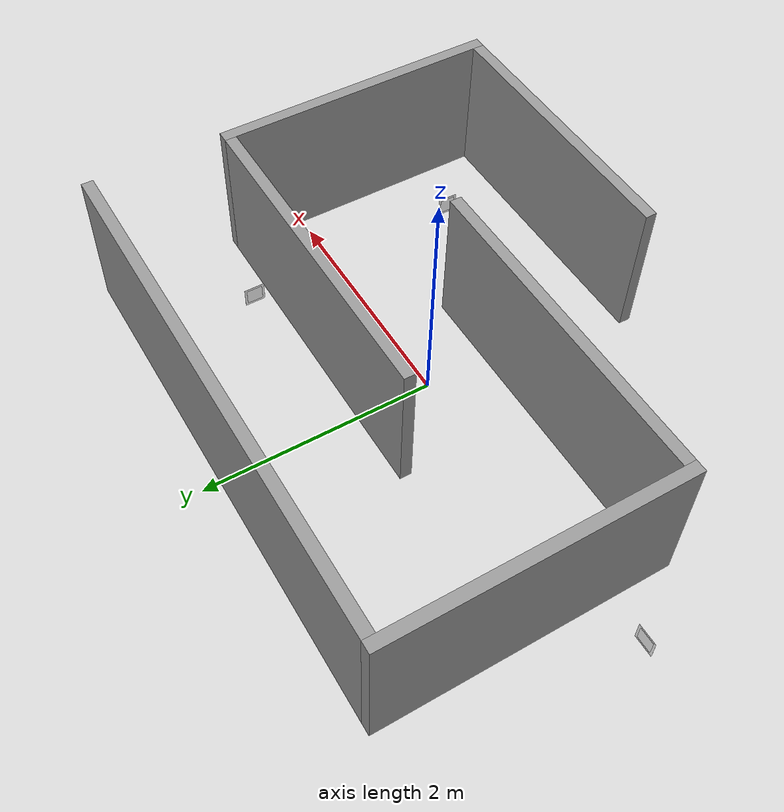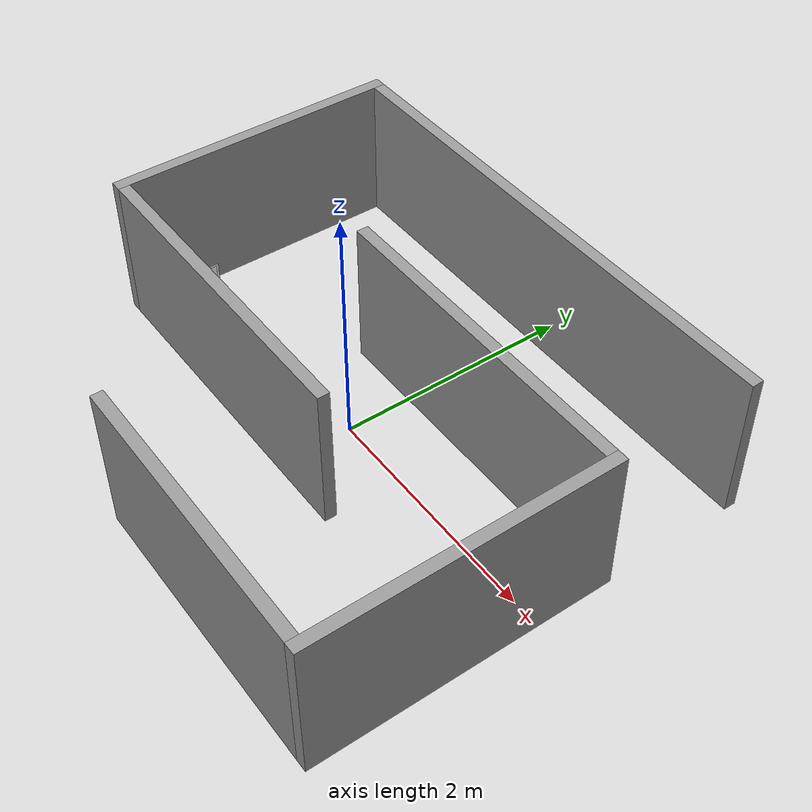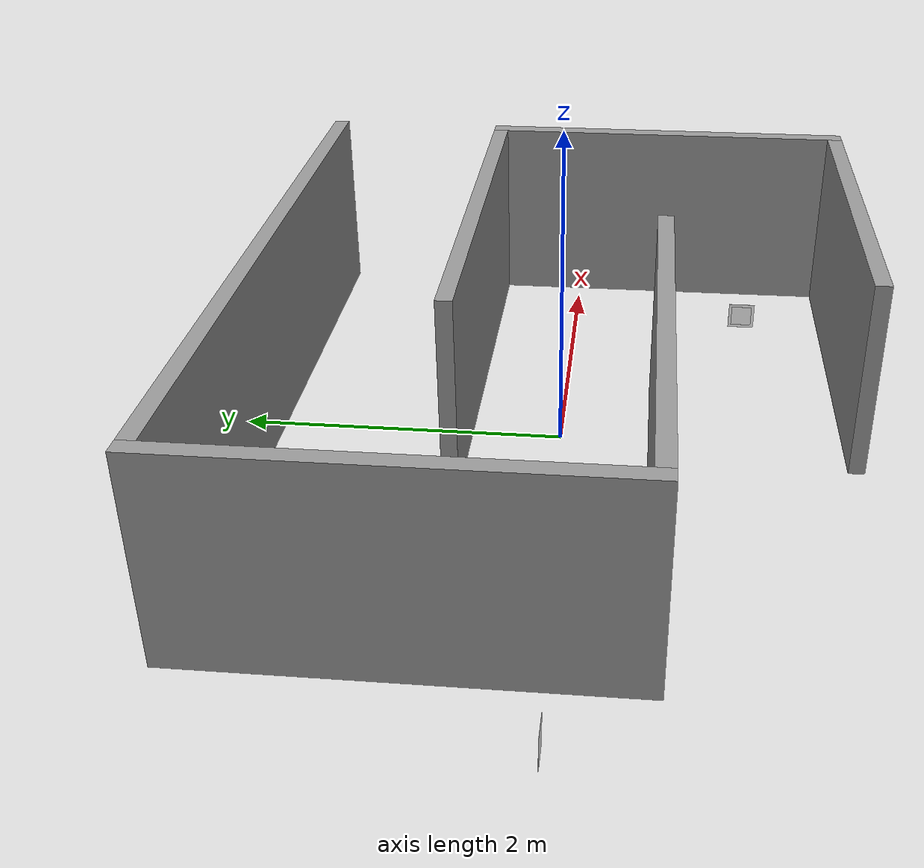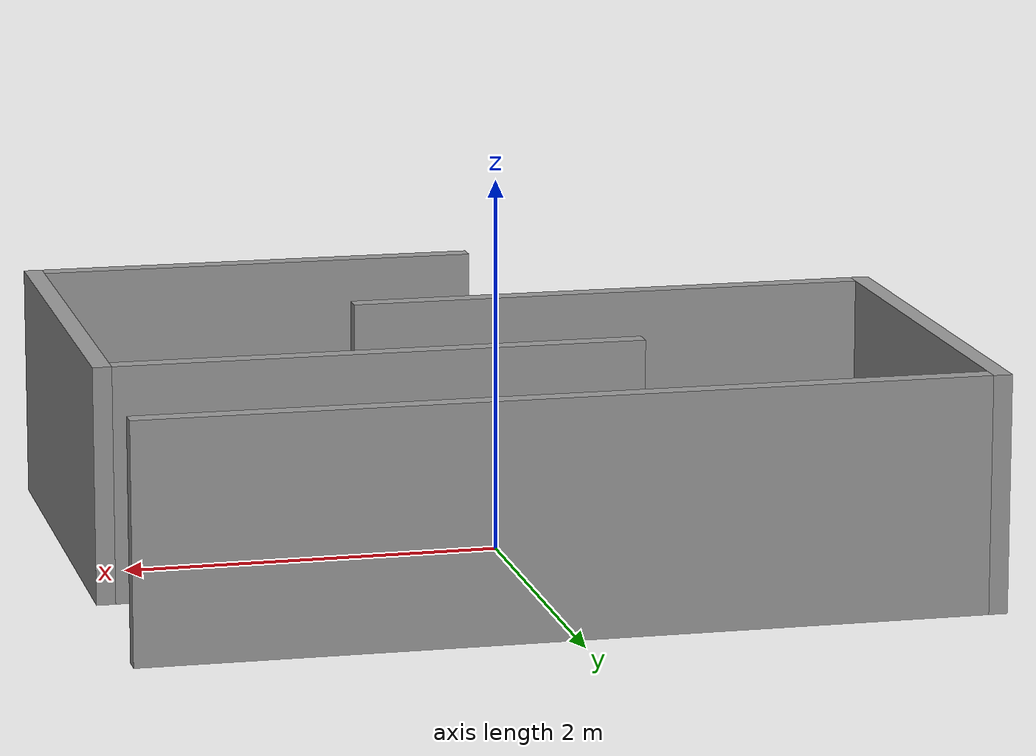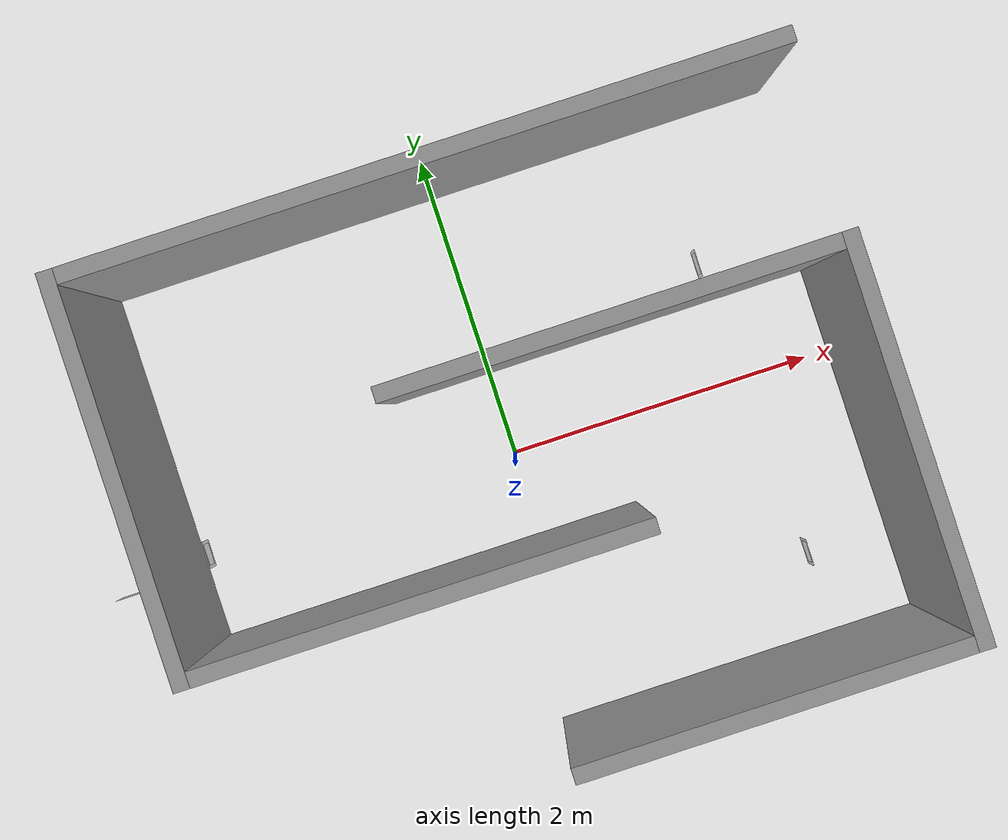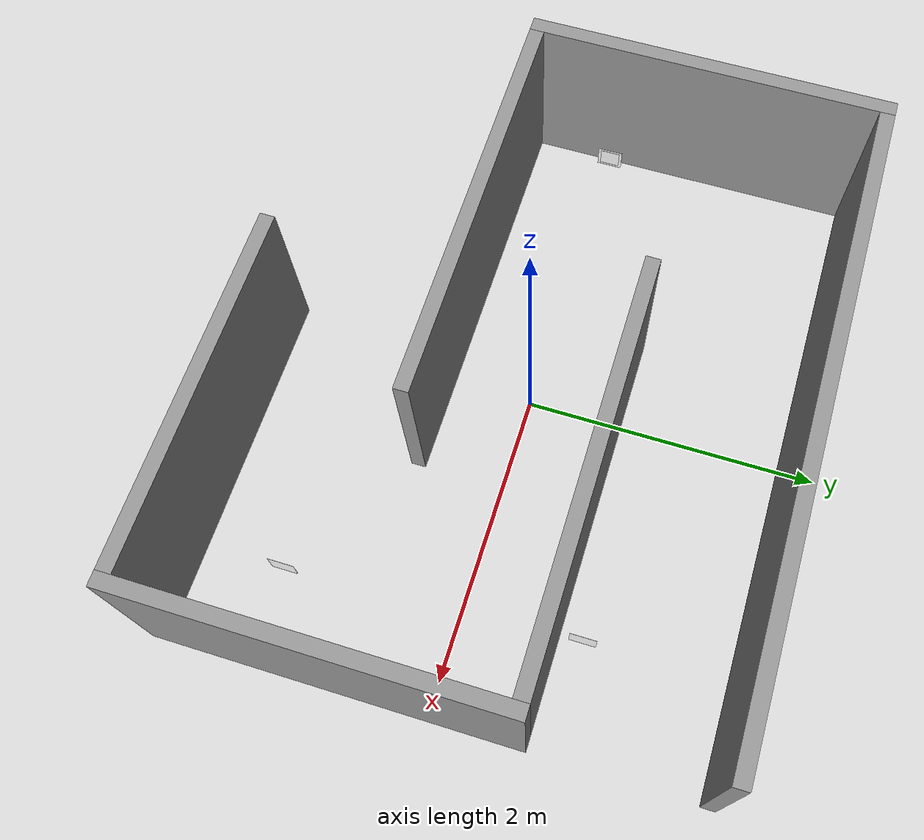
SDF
<sdf version="1.4">
 <world name="default">
  <physics name="1ms" type="ignored">
   <max_step_size>0.001</max_step_size>
   <real_time_factor>1.0</real_time_factor>
  </physics>
  <plugin filename="gz-sim-physics-system" name="gz::sim::systems::Physics"/>
  <plugin filename="gz-sim-user-commands-system" name="gz::sim::systems::UserCommands"/>
  <plugin filename="gz-sim-scene-broadcaster-system" name="gz::sim::systems::SceneBroadcaster"/>
  <plugin filename="gz-sim-sensors-system" name="gz::sim::systems::Sensors">
   <render_engine>ogre2</render_engine>
  </plugin>
  <scene><ambient>0.4 0.4 0.4 1</ambient><background>0.7 0.7 0.7 1</background><shadows>false</shadows></scene>
  <include><uri>model://avoidance_world_1</uri></include>
  <include>
   <name>marker_0</name>
   <uri>model://aruco_marker_0</uri>
   <pose>-2.65 -0.10 0.091 0 0 1.5708</pose>
  </include>
  <include>
   <name>marker_1</name>
   <uri>model://aruco_marker_1</uri>
   <pose>1.60 -1.20 0.091 0 0 3.14159</pose>
  </include>
  <include><name>marker_2</name><uri>model://aruco_marker_2</uri><pose>-2.10 0 0.091 0 0 0.0</pose></include>
  <include>
   <name>marker_3</name>
   <uri>model://aruco_marker_3</uri>
   <pose>1.50 0.80 0.091 0 0 3.14159</pose>
  </include>
 </world>
</sdf>

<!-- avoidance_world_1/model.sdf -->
<sdf version="1.5">
  <model name='office'>

    <static>1</static>

    <link name='Wall_10'>
        <pose>-0.750 -0.6 0.625 0.0 0.0 0.0</pose>

        <visual name='Wall_10_Visual'>
            <pose>0 0 0 0 -0 0</pose>
            <geometry>
                <box>
                    <size>2.8 0.1 1.25</size>
                </box>
            </geometry>
              <material>
                <ambient>0.6 0.6 0.6 1</ambient>
                <diffuse>0.6 0.6 0.6 1</diffuse>
                <specular>0.6 0.6 0.6 1</specular>
              </material>
        <cast_shadows>0</cast_shadows>
      </visual>

      <collision name='Wall_10_Collision'>
        <max_contacts>10</max_contacts>
        <pose>0 0 0.0 0 0 0</pose>
        <geometry>
          <box>
            <size>2.8 0.1 1.25</size>
          </box>
        </geometry>
        <surface>
          <friction>
            <ode>
              <mu>1</mu>
              <mu2>1</mu2>
              <fdir1>0 0 0</fdir1>
              <slip1>0</slip1>
              <slip2>0</slip2>
            </ode>
          </friction>
          <bounce>
            <restitution_coefficient>0</restitution_coefficient>
            <threshold>1e+06</threshold>
          </bounce>
          <contact>
            <collide_without_contact>0</collide_without_contact>
            <collide_without_contact_bitmask>1</collide_without_contact_bitmask>
            <collide_bitmask>1</collide_bitmask>
            <ode>
              <soft_cfm>0</soft_cfm>
              <soft_erp>0.2</soft_erp>
              <kp>1e+13</kp>
              <kd>1</kd>
              <max_vel>0.01</max_vel>
              <min_depth>0</min_depth>
            </ode>
            <bullet>
              <split_impulse>1</split_impulse>
              <split_impulse_penetration_threshold>-0.01</split_impulse_penetration_threshold>
              <soft_cfm>0</soft_cfm>
              <soft_erp>0.2</soft_erp>
              <kp>1e+13</kp>
              <kd>1</kd>
            </bullet>
          </contact>
        </surface>
      </collision>
    </link>

    <link name='Wall_20'>
          <pose>-2.2 0.6 0.625 0.0 0.0 0.0</pose>

          <visual name='Wall_20_Visual'>
              <pose>0 0 0 0 -0 0</pose>
              <geometry>
                  <box>
                      <size>0.1 2.5 1.25</size>
                  </box>
              </geometry>
              <material>
                <ambient>0.6 0.6 0.6 1</ambient>
                <diffuse>0.6 0.6 0.6 1</diffuse>
                <specular>0.6 0.6 0.6 1</specular>
              </material>
          <cast_shadows>0</cast_shadows>
        </visual>

        <collision name='Wall_20_Collision'>
          <max_contacts>10</max_contacts>
          <pose>0 0 0.0 0 0 0</pose>
          <geometry>
            <box>
              <size>0.1 2.5 1.25</size>
            </box>
          </geometry>
          <surface>
            <friction>
              <ode>
                <mu>1</mu>
                <mu2>1</mu2>
                <fdir1>0 0 0</fdir1>
                <slip1>0</slip1>
                <slip2>0</slip2>
              </ode>
            </friction>
            <bounce>
              <restitution_coefficient>0</restitution_coefficient>
              <threshold>1e+06</threshold>
            </bounce>
            <contact>
              <collide_without_contact>0</collide_without_contact>
              <collide_without_contact_bitmask>1</collide_without_contact_bitmask>
              <collide_bitmask>1</collide_bitmask>
              <ode>
                <soft_cfm>0</soft_cfm>
                <soft_erp>0.2</soft_erp>
                <kp>1e+13</kp>
                <kd>1</kd>
                <max_vel>0.01</max_vel>
                <min_depth>0</min_depth>
              </ode>
              <bullet>
                <split_impulse>1</split_impulse>
                <split_impulse_penetration_threshold>-0.01</split_impulse_penetration_threshold>
                <soft_cfm>0</soft_cfm>
                <soft_erp>0.2</soft_erp>
                <kp>1e+13</kp>
                <kd>1</kd>
              </bullet>
            </contact>
          </surface>
        </collision>
    </link>

    <link name='Wall_30'>
        <pose>0.05 1.8 0.625 0.0 0.0 0.0</pose>

        <visual name='Wall_30_Visual'>
            <pose>0 0 0 0 -0 0</pose>
            <geometry>
                <box>
                    <size>4.4 0.1 1.25</size>
                </box>
            </geometry>
              <material>
                <ambient>0.6 0.6 0.6 1</ambient>
                <diffuse>0.6 0.6 0.6 1</diffuse>
                <specular>0.6 0.6 0.6 1</specular>
              </material>
        <cast_shadows>0</cast_shadows>
      </visual>

      <collision name='Wall_30_Collision'>
        <max_contacts>10</max_contacts>
        <pose>0 0 0.0 0 0 0</pose>
        <geometry>
          <box>
            <size>4.4 0.1 1.25</size>
          </box>
        </geometry>
        <surface>
          <friction>
            <ode>
              <mu>1</mu>
              <mu2>1</mu2>
              <fdir1>0 0 0</fdir1>
              <slip1>0</slip1>
              <slip2>0</slip2>
            </ode>
          </friction>
          <bounce>
            <restitution_coefficient>0</restitution_coefficient>
            <threshold>1e+06</threshold>
          </bounce>
          <contact>
            <collide_without_contact>0</collide_without_contact>
            <collide_without_contact_bitmask>1</collide_without_contact_bitmask>
            <collide_bitmask>1</collide_bitmask>
            <ode>
              <soft_cfm>0</soft_cfm>
              <soft_erp>0.2</soft_erp>
              <kp>1e+13</kp>
              <kd>1</kd>
              <max_vel>0.01</max_vel>
              <min_depth>0</min_depth>
            </ode>
            <bullet>
              <split_impulse>1</split_impulse>
              <split_impulse_penetration_threshold>-0.01</split_impulse_penetration_threshold>
              <soft_cfm>0</soft_cfm>
              <soft_erp>0.2</soft_erp>
              <kp>1e+13</kp>
              <kd>1</kd>
            </bullet>
          </contact>
        </surface>
      </collision>
    </link>

    <link name='Wall_40'>
        <!-- Parte superior quitada: antes y=-1.85..1.75, ahora y=-1.85..0.65
             Abre salida este de la zona superior (entre Wall_60 y Wall_30). -->
        <pose>2.2 -0.60 0.625 0.0 0.0 0.0</pose>

        <visual name='Wall_40_Visual'>
            <pose>0 0 0 0 -0 0</pose>
            <geometry>
                <box>
                    <size>0.1 2.5 1.25</size>
                </box>
            </geometry>
              <material>
                <ambient>0.6 0.6 0.6 1</ambient>
                <diffuse>0.6 0.6 0.6 1</diffuse>
                <specular>0.6 0.6 0.6 1</specular>
              </material>
        <cast_shadows>0</cast_shadows>
      </visual>

      <collision name='Wall_40_Collision'>
        <max_contacts>10</max_contacts>
        <pose>0 0 0.0 0 0 0</pose>
        <geometry>
          <box>
            <size>0.1 2.5 1.25</size>
          </box>
        </geometry>
        <surface>
          <friction>
            <ode>
              <mu>1</mu>
              <mu2>1</mu2>
              <fdir1>0 0 0</fdir1>
              <slip1>0</slip1>
              <slip2>0</slip2>
            </ode>
          </friction>
          <bounce>
            <restitution_coefficient>0</restitution_coefficient>
            <threshold>1e+06</threshold>
          </bounce>
          <contact>
            <collide_without_contact>0</collide_without_contact>
            <collide_without_contact_bitmask>1</collide_without_contact_bitmask>
            <collide_bitmask>1</collide_bitmask>
            <ode>
              <soft_cfm>0</soft_cfm>
              <soft_erp>0.2</soft_erp>
              <kp>1e+13</kp>
              <kd>1</kd>
              <max_vel>0.01</max_vel>
              <min_depth>0</min_depth>
            </ode>
            <bullet>
              <split_impulse>1</split_impulse>
              <split_impulse_penetration_threshold>-0.01</split_impulse_penetration_threshold>
              <soft_cfm>0</soft_cfm>
              <soft_erp>0.2</soft_erp>
              <kp>1e+13</kp>
              <kd>1</kd>
            </bullet>
          </contact>
        </surface>
      </collision>
    </link>

    <link name='Wall_50'>
        <pose>0.95 -1.8 0.625 0.0 0.0 0.0</pose>

        <visual name='Wall_50_Visual'>
            <pose>0 0 0 0 -0 0</pose>
            <geometry>
                <box>
                    <size>2.4 0.1 1.25</size>
                </box>
            </geometry>
              <material>
                <ambient>0.6 0.6 0.6 1</ambient>
                <diffuse>0.6 0.6 0.6 1</diffuse>
                <specular>0.6 0.6 0.6 1</specular>
              </material>
        <cast_shadows>0</cast_shadows>
      </visual>

      <collision name='Wall_50_Collision'>
        <max_contacts>10</max_contacts>
        <pose>0 0 0.0 0 0 0</pose>
        <geometry>
          <box>
            <size>2.4 0.1 1.25</size>
          </box>
        </geometry>
        <surface>
          <friction>
            <ode>
              <mu>1</mu>
              <mu2>1</mu2>
              <fdir1>0 0 0</fdir1>
              <slip1>0</slip1>
              <slip2>0</slip2>
            </ode>
          </friction>
          <bounce>
            <restitution_coefficient>0</restitution_coefficient>
            <threshold>1e+06</threshold>
          </bounce>
          <contact>
            <collide_without_contact>0</collide_without_contact>
            <collide_without_contact_bitmask>1</collide_without_contact_bitmask>
            <collide_bitmask>1</collide_bitmask>
            <ode>
              <soft_cfm>0</soft_cfm>
              <soft_erp>0.2</soft_erp>
              <kp>1e+13</kp>
              <kd>1</kd>
              <max_vel>0.01</max_vel>
              <min_depth>0</min_depth>
            </ode>
            <bullet>
              <split_impulse>1</split_impulse>
              <split_impulse_penetration_threshold>-0.01</split_impulse_penetration_threshold>
              <soft_cfm>0</soft_cfm>
              <soft_erp>0.2</soft_erp>
              <kp>1e+13</kp>
              <kd>1</kd>
            </bullet>
          </contact>
        </surface>
      </collision>
    </link>

    <link name='Wall_60'>
        <pose>0.75 0.6 0.625 0.0 0.0 0.0</pose>

        <visual name='Wall_60_Visual'>
            <pose>0 0 0 0 -0 0</pose>
            <geometry>
                <box>
                    <size>2.8 0.1 1.25</size>
                </box>
            </geometry>
              <material>
                <ambient>0.6 0.6 0.6 1</ambient>
                <diffuse>0.6 0.6 0.6 1</diffuse>
                <specular>0.6 0.6 0.6 1</specular>
              </material>
        <cast_shadows>0</cast_shadows>
      </visual>

      <collision name='Wall_60_Collision'>
        <max_contacts>10</max_contacts>
        <pose>0 0 0.0 0 0 0</pose>
        <geometry>
          <box>
            <size>2.8 0.1 1.25</size>
          </box>
        </geometry>
        <surface>
          <friction>
            <ode>
              <mu>1</mu>
              <mu2>1</mu2>
              <fdir1>0 0 0</fdir1>
              <slip1>0</slip1>
              <slip2>0</slip2>
            </ode>
          </friction>
          <bounce>
            <restitution_coefficient>0</restitution_coefficient>
            <threshold>1e+06</threshold>
          </bounce>
          <contact>
            <collide_without_contact>0</collide_without_contact>
            <collide_without_contact_bitmask>1</collide_without_contact_bitmask>
            <collide_bitmask>1</collide_bitmask>
            <ode>
              <soft_cfm>0</soft_cfm>
              <soft_erp>0.2</soft_erp>
              <kp>1e+13</kp>
              <kd>1</kd>
              <max_vel>0.01</max_vel>
              <min_depth>0</min_depth>
            </ode>
            <bullet>
              <split_impulse>1</split_impulse>
              <split_impulse_penetration_threshold>-0.01</split_impulse_penetration_threshold>
              <soft_cfm>0</soft_cfm>
              <soft_erp>0.2</soft_erp>
              <kp>1e+13</kp>
              <kd>1</kd>
            </bullet>
          </contact>
        </surface>
      </collision>
    </link>

  </model>
  </sdf>

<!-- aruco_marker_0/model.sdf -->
<sdf version="1.5">
    <model name='aruco_marker_1'>
    <pose>0 0 0 0 0 0</pose>
    <static>true</static>
        <link name='link'>
            <inertial>
                <pose>0 0 0 0 -0 0</pose>
                <mass>0.281</mass>
                <inertia>
                    <ixx>0.0006167</ixx>
                    <ixy>0</ixy>
                    <ixz>0</ixz>
                    <iyy>0.0006167</iyy>
                    <iyz>0</iyz>
                    <izz>0.0006167</izz>
                </inertia>
            </inertial>

            <visual name='box_visual'>
                <cast_shadows>0</cast_shadows>
                    <geometry>
                        <box>
                            <size>0.001 0.18 0.18</size>
                        </box>
                    </geometry>
                <material>
                    <ambient>1 1 1 1</ambient>
                    <diffuse>1 1 1 1</diffuse>
                    <specular>1 1 1 1</specular>
                    <emissive>0.6 0.6 0.6 1</emissive>
                </material>
            </visual>

            <visual name='aruco_visual1'>
                <cast_shadows>0</cast_shadows>
                <pose>0.00065 0.0 0.0 1.5708 0.0 1.5708</pose>
                <geometry>
                    <plane>
                        <normal>0 0 1</normal>
                        <size>0.14 0.14</size>
                    </plane>
                </geometry>
                <material>
                    <pbr>
                        <metal>
                            <albedo_map>model://aruco_marker_0/materials/textures/marker0.png</albedo_map>
                            <normal_map>model://aruco_marker_0/materials/textures/marker0.png</normal_map>
                        </metal>
                    </pbr>
                    <ambient>1 1 1 1</ambient>
                    <diffuse>1 1 1 1</diffuse>
                    <specular>1 1 1 1</specular>
                    <emissive>0.0 0.0 0.0 1</emissive>
                </material>
            </visual>

        </link>
    </model>
</sdf>

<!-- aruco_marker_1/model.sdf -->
<sdf version="1.5">

    <model name='aruco_marker_2'>
        <pose>0 0 0 0 0 0</pose>
        <static>true</static>
        <link name='link'>
            <inertial>
                <pose>0 0 0 0 -0 0</pose>
                <mass>0.281</mass>
                <inertia>
                    <ixx>0.0006167</ixx>
                    <ixy>0</ixy>
                    <ixz>0</ixz>
                    <iyy>0.0006167</iyy>
                    <iyz>0</iyz>
                    <izz>0.0006167</izz>
                </inertia>
            </inertial>

            <visual name='box_visual'>
                <cast_shadows>0</cast_shadows>
                    <geometry>
                        <box>
                            <size>0.001 0.18 0.18</size>
                        </box>
                    </geometry>
                    <material>
                    <ambient>1 1 1 1</ambient>
                    <diffuse>1 1 1 1</diffuse>
                    <specular>1 1 1 1</specular>
                    <emissive>0.6 0.6 0.6 1</emissive>
                </material>
            </visual>

            <visual name='aruco_visual1'>
                <cast_shadows>0</cast_shadows>
                <pose>0.00065 0.0 0.0 1.5708 0.0 1.5708</pose>
                <geometry>
                    <plane>
                        <normal>0 0 1</normal>
                        <size>0.14 0.14</size>
                    </plane>
                </geometry>
                <material>
                    <pbr>
                        <metal>
                            <albedo_map>model://aruco_marker_1/materials/textures/marker1.png</albedo_map>
                            <normal_map>model://aruco_marker_1/materials/textures/marker1.png</normal_map>
                        </metal>
                    </pbr>
                    <ambient>1 1 1 1</ambient>
                    <diffuse>1 1 1 1</diffuse>
                    <specular>1 1 1 1</specular>
                    <emissive>0.0 0.0 0.0 1</emissive>
                </material>
            </visual>

        </link>
    </model>
</sdf>

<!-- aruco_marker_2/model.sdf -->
<sdf version="1.5">

    <model name='aruco_marker_3'>
        <pose>0 0 0 0 0 0</pose>
        <static>true</static>
        <link name='link'>
            <inertial>
                <pose>0 0 0 0 -0 0</pose>
                <mass>0.281</mass>
                <inertia>
                    <ixx>0.0006167</ixx>
                    <ixy>0</ixy>
                    <ixz>0</ixz>
                    <iyy>0.0006167</iyy>
                    <iyz>0</iyz>
                    <izz>0.0006167</izz>
                </inertia>
            </inertial>

            <visual name='box_visual'>
                <cast_shadows>0</cast_shadows>
                    <geometry>
                        <box>
                            <size>0.001 0.18 0.18</size>
                        </box>
                    </geometry>
                <material>
                    <ambient>1 1 1 1</ambient>
                    <diffuse>1 1 1 1</diffuse>
                    <specular>1 1 1 1</specular>
                    <emissive>0.6 0.6 0.6 1</emissive>
                </material>
            </visual>

            <visual name='aruco_visual1'>
                <cast_shadows>0</cast_shadows>
                <pose>0.00065 0.0 0.0 1.5708 0.0 1.5708</pose>
                <geometry>
                    <plane>
                        <normal>0 0 1</normal>
                        <size>0.14 0.14</size>
                    </plane>
                </geometry>
                <material>
                    <pbr>
                        <metal>
                            <albedo_map>model://aruco_marker_2/materials/textures/marker2.png</albedo_map>
                            <normal_map>model://aruco_marker_2/materials/textures/marker2.png</normal_map>
                        </metal>
                    </pbr>
                    <ambient>1 1 1 1</ambient>
                    <diffuse>1 1 1 1</diffuse>
                    <specular>1 1 1 1</specular>
                    <emissive>0.0 0.0 0.0 1</emissive>
                </material>
            </visual>

        </link>
    </model>
</sdf>

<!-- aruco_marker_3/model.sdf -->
<sdf version="1.5">

    <model name='aruco_marker_4'>
        <pose>0 0 0 0 0 0</pose>
        <static>true</static>
        <link name='link'>
            <inertial>
                <pose>0 0 0 0 -0 0</pose>
                <mass>0.281</mass>
                <inertia>
                    <ixx>0.0006167</ixx>
                    <ixy>0</ixy>
                    <ixz>0</ixz>
                    <iyy>0.0006167</iyy>
                    <iyz>0</iyz>
                    <izz>0.0006167</izz>
                </inertia>
            </inertial>

            <visual name='box_visual'>
                <cast_shadows>0</cast_shadows>
                    <geometry>
                        <box>
                            <size>0.001 0.18 0.18</size>
                        </box>
                    </geometry>
                <material>
                    <ambient>1 1 1 1</ambient>
                    <diffuse>1 1 1 1</diffuse>
                    <specular>1 1 1 1</specular>
                    <emissive>0.6 0.6 0.6 1</emissive>
                </material>
            </visual>

            <visual name='aruco_visual1'>
                <cast_shadows>0</cast_shadows>
                <pose>0.00065 0.0 0.0 1.5708 0.0 1.5708</pose>
                <geometry>
                    <plane>
                        <normal>0 0 1</normal>
                        <size>0.14 0.14</size>
                    </plane>
                </geometry>
                <material>
                    <pbr>
                        <metal>
                            <albedo_map>model://aruco_marker_3/materials/textures/marker3.png</albedo_map>
                            <normal_map>model://aruco_marker_3/materials/textures/marker3.png</normal_map>
                        </metal>
                    </pbr>
                    <ambient>1 1 1 1</ambient>
                    <diffuse>1 1 1 1</diffuse>
                    <specular>1 1 1 1</specular>
                    <emissive>0.0 0.0 0.0 1</emissive>
                </material>
            </visual>

        </link>
    </model>
</sdf>
